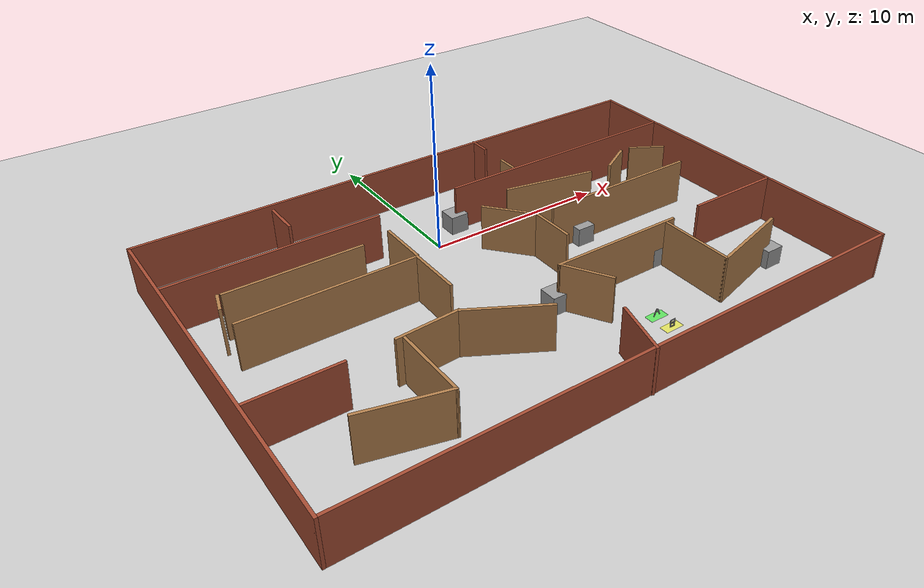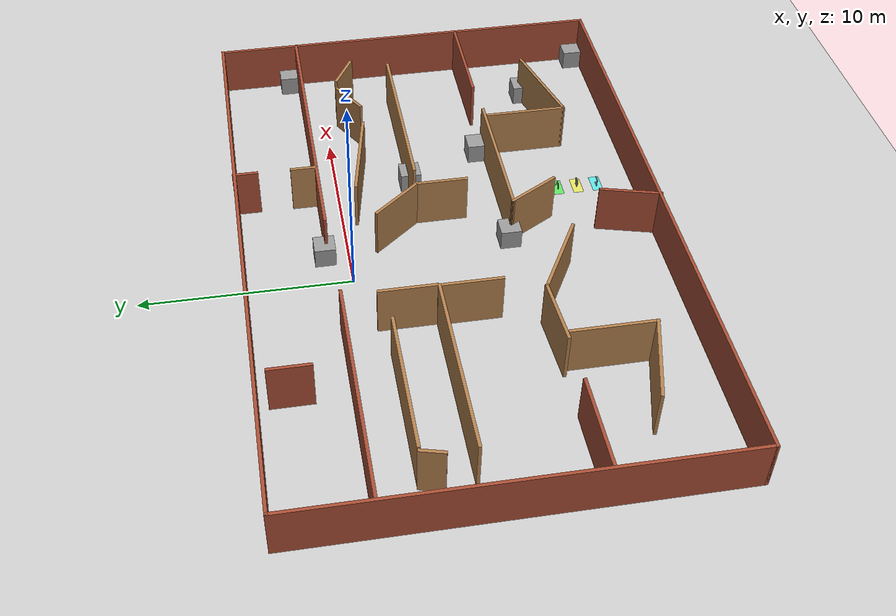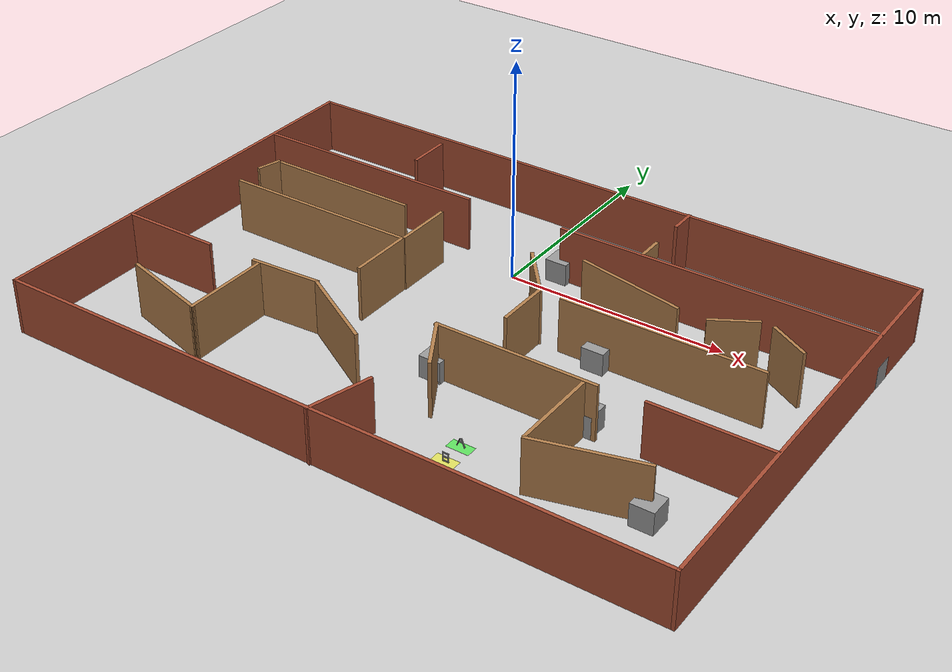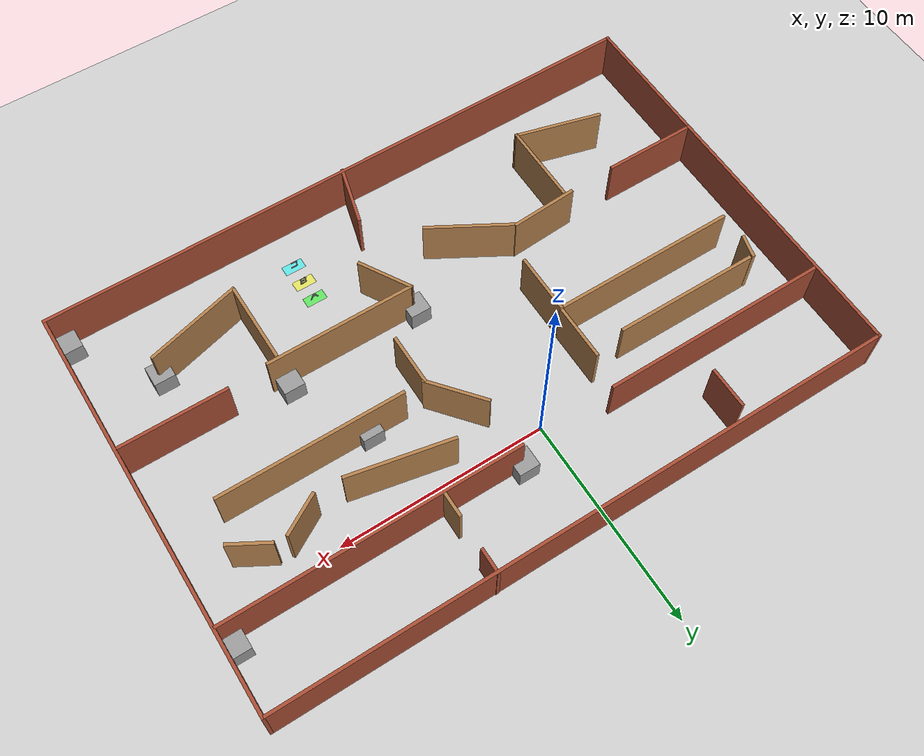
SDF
<sdf version="1.7">
 <world name="my_world">
  <model name="ground_plane">
   <static>1</static>
   <link name="link">
    <collision name="collision">
     <geometry><plane><normal>0 0 1</normal><size>100 100</size></plane></geometry>
     <surface>
      <contact><collide_bitmask>65535</collide_bitmask></contact>
      <friction><ode><mu>100</mu><mu2>50</mu2></ode></friction>
     </surface>
    </collision>
    <visual name="visual">
     <cast_shadows>0</cast_shadows>
     <geometry><plane><normal>0 0 1</normal><size>100 100</size></plane></geometry>
     <material>
      <script><uri>file://media/materials/scripts/gazebo.material</uri><name>Gazebo/Grey</name></script>
     </material>
    </visual>
   </link>
  </model>
  <model name="officeroom">
   <pose>0.9981 -4.92976 0 0 -0 0</pose>
   <link name="Wall_10">
    <collision name="Wall_10_Collision">
     <geometry><box><size>20 0.15 2.5</size></box></geometry>
     <pose>0 0 1.25 0 -0 0</pose>
    </collision>
    <visual name="Wall_10_Visual">
     <pose>0 0 1.25 0 -0 0</pose>
     <geometry><box><size>20 0.15 2.5</size></box></geometry>
     <material>
      <script><uri>file://media/materials/scripts/gazebo.material</uri><name>Gazebo/Bricks</name></script>
      <ambient>1 1 1 1</ambient>
     </material>
     <meta><layer>0</layer></meta>
    </visual>
    <pose>14.925 0.014919 0 0 -0 -1.57081</pose>
   </link>
   <link name="Wall_107">
    <collision name="Wall_107_Collision">
     <geometry><box><size>3.27854 0.15 2.5</size></box></geometry>
     <pose>0 0 1.25 0 -0 0</pose>
    </collision>
    <visual name="Wall_107_Visual">
     <pose>0 0 1.25 0 -0 0</pose>
     <geometry><box><size>3.27854 0.15 2.5</size></box></geometry>
     <material>
      <script><uri>file://media/materials/scripts/gazebo.material</uri><name>Gazebo/Wood</name></script>
      <ambient>1 1 1 1</ambient>
     </material>
     <meta><layer>0</layer></meta>
    </visual>
    <pose>-6.58027 -3.242 0 0 -0 -3.08207</pose>
   </link>
   <link name="Wall_109">
    <collision name="Wall_109_Collision">
     <geometry><box><size>4.5 0.15 2.5</size></box></geometry>
     <pose>0 0 1.25 0 -0 0</pose>
    </collision>
    <visual name="Wall_109_Visual">
     <pose>0 0 1.25 0 -0 0</pose>
     <geometry><box><size>4.5 0.15 2.5</size></box></geometry>
     <material>
      <script><uri>file://media/materials/scripts/gazebo.material</uri><name>Gazebo/Bricks</name></script>
      <ambient>1 1 1 1</ambient>
     </material>
     <meta><layer>0</layer></meta>
    </visual>
    <pose>-12.6881 -3.41033 0 0 -0 0</pose>
   </link>
   <link name="Wall_113">
    <collision name="Wall_113_Collision">
     <geometry><box><size>7.25 0.15 2.5</size></box></geometry>
     <pose>0 0 1.25 0 -0 0</pose>
    </collision>
    <visual name="Wall_113_Visual">
     <pose>0 0 1.25 0 -0 0</pose>
     <geometry><box><size>7.25 0.15 2.5</size></box></geometry>
     <material>
      <script><uri>file://media/materials/scripts/gazebo.material</uri><name>Gazebo/Wood</name></script>
      <ambient>1 1 1 1</ambient>
     </material>
     <meta><layer>0</layer></meta>
    </visual>
    <pose>4.22386 -2.91887 0 0 -0 0</pose>
   </link>
   <link name="Wall_115">
    <collision name="Wall_115_Collision">
     <geometry><box><size>5.25 0.15 2.5</size></box></geometry>
     <pose>0 0 1.25 0 -0 0</pose>
    </collision>
    <visual name="Wall_115_Visual">
     <pose>0 0 1.25 0 -0 0</pose>
     <geometry><box><size>5.25 0.15 2.5</size></box></geometry>
     <material>
      <script><uri>file://media/materials/scripts/gazebo.material</uri><name>Gazebo/Bricks</name></script>
      <ambient>1 1 1 1</ambient>
     </material>
     <meta><layer>0</layer></meta>
    </visual>
    <pose>12.3137 -2.7793 0 0 -0 3.14159</pose>
   </link>
   <link name="Wall_118">
    <collision name="Wall_118_Collision">
     <geometry><box><size>2.5 0.15 2.5</size></box></geometry>
     <pose>0 0 1.25 0 -0 0</pose>
    </collision>
    <visual name="Wall_118_Visual">
     <pose>0 0 1.25 0 -0 0</pose>
     <geometry><box><size>2.5 0.15 2.5</size></box></geometry>
     <material>
      <script><uri>file://media/materials/scripts/gazebo.material</uri><name>Gazebo/Wood</name></script>
      <ambient>1 1 1 1</ambient>
     </material>
     <meta><layer>0</layer></meta>
    </visual>
    <pose>2.60295 0.147134 0 0 -0 -1.5708</pose>
   </link>
   <link name="Wall_12">
    <collision name="Wall_12_Collision">
     <geometry><box><size>30 0.15 2.5</size></box></geometry>
     <pose>0 0 1.25 0 -0 0</pose>
    </collision>
    <visual name="Wall_12_Visual">
     <pose>0 0 1.25 0 -0 0</pose>
     <geometry><box><size>30 0.15 2.5</size></box></geometry>
     <material>
      <script><uri>file://media/materials/scripts/gazebo.material</uri><name>Gazebo/Bricks</name></script>
      <ambient>1 1 1 1</ambient>
     </material>
     <meta><layer>0</layer></meta>
    </visual>
    <pose>-0.000162 -9.90993 0 0 -0 3.14159</pose>
   </link>
   <link name="Wall_120">
    <collision name="Wall_120_Collision">
     <geometry><box><size>2.75 0.15 2.5</size></box></geometry>
     <pose>0 0 1.25 0 -0 0</pose>
    </collision>
    <visual name="Wall_120_Visual">
     <pose>0 0 1.25 0 -0 0</pose>
     <geometry><box><size>2.75 0.15 2.5</size></box></geometry>
     <material>
      <script><uri>file://media/materials/scripts/gazebo.material</uri><name>Gazebo/Wood</name></script>
      <ambient>1 1 1 1</ambient>
     </material>
     <meta><layer>0</layer></meta>
    </visual>
    <pose>1.32386 -4.0447 0 0 -0 -1.0472</pose>
   </link>
   <link name="Wall_125">
    <collision name="Wall_125_Collision">
     <geometry><box><size>4 0.15 2.5</size></box></geometry>
     <pose>0 0 1.25 0 -0 0</pose>
    </collision>
    <visual name="Wall_125_Visual">
     <pose>0 0 1.25 0 -0 0</pose>
     <geometry><box><size>4 0.15 2.5</size></box></geometry>
     <material>
      <script><uri>file://media/materials/scripts/gazebo.material</uri><name>Gazebo/Wood</name></script>
      <ambient>1 1 1 1</ambient>
     </material>
     <meta><layer>0</layer></meta>
    </visual>
    <pose>-7.82101 -5.406 0 0 -0 -1.5708</pose>
   </link>
   <link name="Wall_127">
    <collision name="Wall_127_Collision">
     <geometry><box><size>4 0.15 2.5</size></box></geometry>
     <pose>0 0 1.25 0 -0 0</pose>
    </collision>
    <visual name="Wall_127_Visual">
     <pose>0 0 1.25 0 -0 0</pose>
     <geometry><box><size>4 0.15 2.5</size></box></geometry>
     <material>
      <script><uri>file://media/materials/scripts/gazebo.material</uri><name>Gazebo/Wood</name></script>
      <ambient>1 1 1 1</ambient>
     </material>
     <meta><layer>0</layer></meta>
    </visual>
    <pose>7.28181 -5.01384 0 0 -0 -1.5708</pose>
   </link>
   <link name="Wall_129">
    <collision name="Wall_129_Collision">
     <geometry><box><size>4.25 0.15 2.5</size></box></geometry>
     <pose>0 0 1.25 0 -0 0</pose>
    </collision>
    <visual name="Wall_129_Visual">
     <pose>0 0 1.25 0 -0 0</pose>
     <geometry><box><size>4.25 0.15 2.5</size></box></geometry>
     <material>
      <script><uri>file://media/materials/scripts/gazebo.material</uri><name>Gazebo/Wood</name></script>
      <ambient>1 1 1 1</ambient>
     </material>
     <meta><layer>0</layer></meta>
    </visual>
    <pose>-9.80116 -6.80042 0 0 -0 2.87979</pose>
   </link>
   <link name="Wall_132">
    <collision name="Wall_132_Collision">
     <geometry><box><size>4.75 0.15 2.5</size></box></geometry>
     <pose>0 0 1.25 0 -0 0</pose>
    </collision>
    <visual name="Wall_132_Visual">
     <pose>0 0 1.25 0 -0 0</pose>
     <geometry><box><size>4.75 0.15 2.5</size></box></geometry>
     <material>
      <script><uri>file://media/materials/scripts/gazebo.material</uri><name>Gazebo/Wood</name></script>
      <ambient>1 1 1 1</ambient>
     </material>
     <meta><layer>0</layer></meta>
    </visual>
    <pose>9.51735 -6.40461 0 0 -0 0.261799</pose>
   </link>
   <link name="Wall_134">
    <collision name="Wall_134_Collision">
     <geometry><box><size>3 0.15 2.5</size></box></geometry>
     <pose>0 0 1.25 0 -0 0</pose>
    </collision>
    <visual name="Wall_134_Visual">
     <pose>0 0 1.25 0 -0 0</pose>
     <geometry><box><size>3 0.15 2.5</size></box></geometry>
     <material>
      <script><uri>file://media/materials/scripts/gazebo.material</uri><name>Gazebo/Bricks</name></script>
      <ambient>1 1 1 1</ambient>
     </material>
     <meta><layer>0</layer></meta>
    </visual>
    <pose>0.445972 -8.57754 0 0 -0 1.309</pose>
   </link>
   <link name="Wall_15">
    <collision name="Wall_15_Collision">
     <geometry><box><size>20 0.15 2.5</size></box></geometry>
     <pose>0 0 1.25 0 -0 0</pose>
    </collision>
    <visual name="Wall_15_Visual">
     <pose>0 0 1.25 0 -0 0</pose>
     <geometry><box><size>20 0.15 2.5</size></box></geometry>
     <material>
      <script><uri>file://media/materials/scripts/gazebo.material</uri><name>Gazebo/Bricks</name></script>
      <ambient>1 1 1 1</ambient>
     </material>
     <meta><layer>0</layer></meta>
    </visual>
    <pose>-14.9252 0.015073 0 0 -0 1.5708</pose>
   </link>
   <link name="Wall_2">
    <collision name="Wall_2_Collision">
     <geometry><box><size>30 0.15 2.5</size></box></geometry>
     <pose>0 0 1.25 0 -0 0</pose>
    </collision>
    <visual name="Wall_2_Visual">
     <pose>0 0 1.25 0 -0 0</pose>
     <geometry><box><size>30 0.15 2.5</size></box></geometry>
     <material>
      <script><uri>file://media/materials/scripts/gazebo.material</uri><name>Gazebo/Bricks</name></script>
      <ambient>1 1 1 1</ambient>
     </material>
     <meta><layer>0</layer></meta>
    </visual>
    <pose>0.000163 9.93976 0 0 -0 0</pose>
   </link>
   <link name="Wall_29">
    <collision name="Wall_29_Collision">
     <geometry><box><size>1.25 0.15 2.5</size></box></geometry>
     <pose>0 0 1.25 0 -0 0</pose>
    </collision>
    <visual name="Wall_29_Visual">
     <pose>0 0 1.25 0 -0 0</pose>
     <geometry><box><size>1.25 0.15 2.5</size></box></geometry>
     <material>
      <script><uri>file://media/materials/scripts/gazebo.material</uri><name>Gazebo/Bricks</name></script>
      <ambient>1 1 1 1</ambient>
     </material>
     <meta><layer>0</layer></meta>
    </visual>
    <pose>4.61028 9.42084 0 0 -0 -1.5708</pose>
   </link>
   <link name="Wall_31">
    <collision name="Wall_31_Collision">
     <geometry><box><size>1.25 0.15 2.5</size></box></geometry>
     <pose>0 0 1.25 0 -0 0</pose>
    </collision>
    <visual name="Wall_31_Visual">
     <pose>0 0 1.25 0 -0 0</pose>
     <geometry><box><size>1.25 0.15 2.5</size></box></geometry>
     <material>
      <script><uri>file://media/materials/scripts/gazebo.material</uri><name>Gazebo/Wood</name></script>
      <ambient>1 1 1 1</ambient>
     </material>
     <meta><layer>0</layer></meta>
    </visual>
    <pose>4.59016 6.61881 0 0 -0 1.5708</pose>
   </link>
   <link name="Wall_34">
    <collision name="Wall_34_Collision">
     <geometry><box><size>2 0.15 2.5</size></box></geometry>
     <pose>0 0 1.25 0 -0 0</pose>
    </collision>
    <visual name="Wall_34_Visual">
     <pose>0 0 1.25 0 -0 0</pose>
     <geometry><box><size>2 0.15 2.5</size></box></geometry>
     <material>
      <script><uri>file://media/materials/scripts/gazebo.material</uri><name>Gazebo/Bricks</name></script>
      <ambient>1 1 1 1</ambient>
     </material>
     <meta><layer>0</layer></meta>
    </visual>
    <pose>-7.92097 8.43964 0 0 -0 -1.5708</pose>
   </link>
   <link name="Wall_38">
    <collision name="Wall_38_Collision">
     <geometry><box><size>11 0.15 2.5</size></box></geometry>
     <pose>0 0 1.25 0 -0 0</pose>
    </collision>
    <visual name="Wall_38_Visual">
     <pose>0 0 1.25 0 -0 0</pose>
     <geometry><box><size>11 0.15 2.5</size></box></geometry>
     <material>
      <script><uri>file://media/materials/scripts/gazebo.material</uri><name>Gazebo/Bricks</name></script>
      <ambient>1 1 1 1</ambient>
     </material>
     <meta><layer>0</layer></meta>
    </visual>
    <pose>-9.35541 5.8262 0 0 -0 0</pose>
   </link>
   <link name="Wall_40">
    <collision name="Wall_40_Collision">
     <geometry><box><size>14.25 0.15 2.5</size></box></geometry>
     <pose>0 0 1.25 0 -0 0</pose>
    </collision>
    <visual name="Wall_40_Visual">
     <pose>0 0 1.25 0 -0 0</pose>
     <geometry><box><size>14.25 0.15 2.5</size></box></geometry>
     <material>
      <script><uri>file://media/materials/scripts/gazebo.material</uri><name>Gazebo/Bricks</name></script>
      <ambient>1 1 1 1</ambient>
     </material>
     <meta><layer>0</layer></meta>
    </visual>
    <pose>7.83962 5.98375 0 0 -0 3.14159</pose>
   </link>
   <link name="Wall_46">
    <collision name="Wall_46_Collision">
     <geometry><box><size>7.0 0.15 2.5</size></box></geometry>
     <pose>0 0 1.25 0 -0 0</pose>
    </collision>
    <visual name="Wall_46_Visual">
     <pose>0 0 1.25 0 -0 0</pose>
     <geometry><box><size>7.0 0.15 2.5</size></box></geometry>
     <material>
      <script><uri>file://media/materials/scripts/gazebo.material</uri><name>Gazebo/Wood</name></script>
      <ambient>1 1 1 1</ambient>
     </material>
     <meta><layer>0</layer></meta>
    </visual>
    <pose>-9.30884 3.8355 0 0 -0 -0.004163</pose>
   </link>
   <link name="Wall_49">
    <collision name="Wall_49_Collision">
     <geometry><box><size>1.17019 0.15 2.5</size></box></geometry>
     <pose>0 0 1.25 0 -0 0</pose>
    </collision>
    <visual name="Wall_49_Visual">
     <pose>0 0 1.25 0 -0 0</pose>
     <geometry><box><size>1.17019 0.15 2.5</size></box></geometry>
     <material>
      <script><uri>file://media/materials/scripts/gazebo.material</uri><name>Gazebo/Wood</name></script>
      <ambient>1 1 1 1</ambient>
     </material>
     <meta><layer>0</layer></meta>
    </visual>
    <pose>-13.076 3.35727 0 0 -0 -1.82702</pose>
   </link>
   <link name="Wall_57">
    <collision name="Wall_57_Collision">
     <geometry><box><size>2.75 0.15 2.5</size></box></geometry>
     <pose>0 0 1.25 0 -0 0</pose>
    </collision>
    <visual name="Wall_57_Visual">
     <pose>0 0 1.25 0 -0 0</pose>
     <geometry><box><size>2.75 0.15 2.5</size></box></geometry>
     <material>
      <script><uri>file://media/materials/scripts/gazebo.material</uri><name>Gazebo/Wood</name></script>
      <ambient>1 1 1 1</ambient>
     </material>
     <meta><layer>0</layer></meta>
    </visual>
    <pose>-4.21161 2.89682 0 0 -0 1.5708</pose>
   </link>
   <link name="Wall_59">
    <collision name="Wall_59_Collision">
     <geometry><box><size>5.0 0.15 2.5</size></box></geometry>
     <pose>0 0 1.25 0 -0 0</pose>
    </collision>
    <visual name="Wall_59_Visual">
     <pose>0 0 1.25 0 -0 0</pose>
     <geometry><box><size>5.0 0.15 2.5</size></box></geometry>
     <material>
      <script><uri>file://media/materials/scripts/gazebo.material</uri><name>Gazebo/Wood</name></script>
      <ambient>1 1 1 1</ambient>
     </material>
     <meta><layer>0</layer></meta>
    </visual>
    <pose>5.28704 3.77735 0 0 -0 -0.202428</pose>
   </link>
   <link name="Wall_60">
    <collision name="Wall_60_Collision">
     <geometry><box><size>2.1 0.15 2.5</size></box></geometry>
     <pose>0 0 1.25 0 -0 0</pose>
    </collision>
    <visual name="Wall_60_Visual">
     <pose>0 0 1.25 0 -0 0</pose>
     <geometry><box><size>2.1 0.15 2.5</size></box></geometry>
     <material>
      <script><uri>file://media/materials/scripts/gazebo.material</uri><name>Gazebo/Wood</name></script>
      <ambient>1 1 1 1</ambient>
     </material>
     <meta><layer>0</layer></meta>
    </visual>
    <pose>9.88652 3.73459 0 0 -0 0.527727</pose>
   </link>
   <link name="Wall_61">
    <collision name="Wall_61_Collision">
     <geometry><box><size>2.0 0.15 2.5</size></box></geometry>
     <pose>0 0 1.25 0 -0 0</pose>
    </collision>
    <visual name="Wall_61_Visual">
     <pose>0 0 1.25 0 -0 0</pose>
     <geometry><box><size>2.0 0.15 2.5</size></box></geometry>
     <material>
      <script><uri>file://media/materials/scripts/gazebo.material</uri><name>Gazebo/Wood</name></script>
      <ambient>1 1 1 1</ambient>
     </material>
     <meta><layer>0</layer></meta>
    </visual>
    <pose>12.2003 3.7238 0 0 -0 -0.523599</pose>
   </link>
   <link name="Wall_66">
    <collision name="Wall_66_Collision">
     <geometry><box><size>3.01901 0.15 2.5</size></box></geometry>
     <pose>0 0 1.25 0 -0 0</pose>
    </collision>
    <visual name="Wall_66_Visual">
     <pose>0 0 1.25 0 -0 0</pose>
     <geometry><box><size>3.01901 0.15 2.5</size></box></geometry>
     <material>
      <script><uri>file://media/materials/scripts/gazebo.material</uri><name>Gazebo/Wood</name></script>
      <ambient>1 1 1 1</ambient>
     </material>
     <meta><layer>0</layer></meta>
    </visual>
    <pose>1.74226 2.43334 0 0 -0 2.25548</pose>
   </link>
   <link name="Wall_68">
    <collision name="Wall_68_Collision">
     <geometry><box><size>9 0.15 2.5</size></box></geometry>
     <pose>0 0 1.25 0 -0 0</pose>
    </collision>
    <visual name="Wall_68_Visual">
     <pose>0 0 1.25 0 -0 0</pose>
     <geometry><box><size>9 0.15 2.5</size></box></geometry>
     <material>
      <script><uri>file://media/materials/scripts/gazebo.material</uri><name>Gazebo/Wood</name></script>
      <ambient>1 1 1 1</ambient>
     </material>
     <meta><layer>0</layer></meta>
    </visual>
    <pose>-8.68528 1.49923 0 0 -0 3.14159</pose>
   </link>
   <link name="Wall_72">
    <collision name="Wall_72_Collision">
     <geometry><box><size>8.9356 0.15 2.5</size></box></geometry>
     <pose>0 0 1.25 0 -0 0</pose>
    </collision>
    <visual name="Wall_72_Visual">
     <pose>0 0 1.25 0 -0 0</pose>
     <geometry><box><size>8.9356 0.15 2.5</size></box></geometry>
     <material>
      <script><uri>file://media/materials/scripts/gazebo.material</uri><name>Gazebo/Wood</name></script>
      <ambient>1 1 1 1</ambient>
     </material>
     <meta><layer>0</layer></meta>
    </visual>
    <pose>8.04226 1.32213 0 0 -0 3.14159</pose>
   </link>
   <link name="Wall_75">
    <collision name="Wall_75_Collision">
     <geometry><box><size>3 0.15 2.5</size></box></geometry>
     <pose>0 0 1.25 0 -0 0</pose>
    </collision>
    <visual name="Wall_75_Visual">
     <pose>0 0 1.25 0 -0 0</pose>
     <geometry><box><size>3 0.15 2.5</size></box></geometry>
     <material>
      <script><uri>file://media/materials/scripts/gazebo.material</uri><name>Gazebo/Wood</name></script>
      <ambient>1 1 1 1</ambient>
     </material>
     <meta><layer>0</layer></meta>
    </visual>
    <pose>-4.26028 0.074229 0 0 -0 -1.5708</pose>
   </link>
   <link name="Wall_81">
    <collision name="Wall_81_Collision">
     <geometry><box><size>4.25 0.15 2.5</size></box></geometry>
     <pose>0 0 1.25 0 -0 0</pose>
    </collision>
    <visual name="Wall_81_Visual">
     <pose>0 0 1.25 0 -0 0</pose>
     <geometry><box><size>4.25 0.15 2.5</size></box></geometry>
     <material>
      <script><uri>file://media/materials/scripts/gazebo.material</uri><name>Gazebo/Wood</name></script>
      <ambient>1 1 1 1</ambient>
     </material>
     <meta><layer>0</layer></meta>
    </visual>
    <pose>-3.1969 -4.22048 0 0 -0 -0.523599</pose>
   </link>
   <static>1</static>
  </model>
  <model name="zone_a">
   <static>1</static>
   <pose>5 -11 0.01 0 -0 0</pose>
   <link name="base">
    <visual name="visual">
     <geometry><box><size>1 0.5 0.02</size></box></geometry>
     <material><ambient>0 1 0 0.5</ambient><diffuse>0 1 0 0.5</diffuse></material>
    </visual>
   </link>
   <link name="letter_A_1">
    <pose>-0.1 0 0.22 0 0.4 0</pose>
    <visual name="v">
     <geometry><box><size>0.04 0.04 0.4</size></box></geometry>
     <material><ambient>0 0 0 1</ambient><diffuse>0 0 0 1</diffuse></material>
    </visual>
   </link>
   <link name="letter_A_2">
    <pose>0.1 0 0.22 0 -0.4 0</pose>
    <visual name="v">
     <geometry><box><size>0.04 0.04 0.4</size></box></geometry>
     <material><ambient>0 0 0 1</ambient><diffuse>0 0 0 1</diffuse></material>
    </visual>
   </link>
   <link name="letter_A_3">
    <pose>0 0 0.25 0 -0 0</pose>
    <visual name="v">
     <geometry><box><size>0.15 0.04 0.04</size></box></geometry>
     <material><ambient>0 0 0 1</ambient><diffuse>0 0 0 1</diffuse></material>
    </visual>
   </link>
  </model>
  <model name="zone_b">
   <static>1</static>
   <pose>5 -12 0.01 0 -0 0</pose>
   <link name="base">
    <visual name="visual">
     <geometry><box><size>1 0.5 0.02</size></box></geometry>
     <material><ambient>1 1 0 0.5</ambient><diffuse>1 1 0 0.5</diffuse></material>
    </visual>
   </link>
   <link name="letter_B_vertical_stroke">
    <pose>-0.1 0 0.2 0 -0 0</pose>
    <visual name="v">
     <geometry><box><size>0.04 0.04 0.4</size></box></geometry>
     <material><ambient>0 0 0 1</ambient><diffuse>0 0 0 1</diffuse></material>
    </visual>
   </link>
   <link name="letter_B_top_horizontal">
    <pose>0.05 0 0.38 0 -0 0</pose>
    <visual name="v">
     <geometry><box><size>0.25 0.04 0.04</size></box></geometry>
     <material><ambient>0 0 0 1</ambient><diffuse>0 0 0 1</diffuse></material>
    </visual>
   </link>
   <link name="letter_B_middle_horizontal">
    <pose>0.05 0 0.2 0 -0 0</pose>
    <visual name="v">
     <geometry><box><size>0.25 0.04 0.04</size></box></geometry>
     <material><ambient>0 0 0 1</ambient><diffuse>0 0 0 1</diffuse></material>
    </visual>
   </link>
   <link name="letter_B_bottom_horizontal">
    <pose>0.05 0 0.02 0 -0 0</pose>
    <visual name="v">
     <geometry><box><size>0.25 0.04 0.04</size></box></geometry>
     <material><ambient>0 0 0 1</ambient><diffuse>0 0 0 1</diffuse></material>
    </visual>
   </link>
   <link name="letter_B_top_vertical_stroke">
    <pose>0.15 0 0.29 0 -0 0</pose>
    <visual name="v">
     <geometry><box><size>0.04 0.04 0.2</size></box></geometry>
     <material><ambient>0 0 0 1</ambient><diffuse>0 0 0 1</diffuse></material>
    </visual>
   </link>
   <link name="letter_B_bottom_vertical_stroke">
    <pose>0.15 0 0.11 0 -0 0</pose>
    <visual name="v">
     <geometry><box><size>0.04 0.04 0.2</size></box></geometry>
     <material><ambient>0 0 0 1</ambient><diffuse>0 0 0 1</diffuse></material>
    </visual>
   </link>
  </model>
  <model name="zone_c">
   <static>1</static>
   <pose>5 -13 0.01 0 -0 0</pose>
   <link name="base">
    <visual name="visual">
     <geometry><box><size>1 0.5 0.02</size></box></geometry>
     <material><ambient>0 1 1 0.5</ambient><diffuse>0 1 1 0.5</diffuse></material>
    </visual>
   </link>
   <link name="letter_C_1">
    <pose>-0.05 0 0.38 0 -0 0</pose>
    <visual name="v">
     <geometry><box><size>0.3 0.04 0.04</size></box></geometry>
     <material><ambient>0 0 0 1</ambient><diffuse>0 0 0 1</diffuse></material>
    </visual>
   </link>
   <link name="letter_C_2">
    <pose>-0.05 0 0.02 0 -0 0</pose>
    <visual name="v">
     <geometry><box><size>0.3 0.04 0.04</size></box></geometry>
     <material><ambient>0 0 0 1</ambient><diffuse>0 0 0 1</diffuse></material>
    </visual>
   </link>
   <link name="letter_C_3">
    <pose>-0.18 0 0.2 0 -0 0</pose>
    <visual name="v">
     <geometry><box><size>0.04 0.04 0.4</size></box></geometry>
     <material><ambient>0 0 0 1</ambient><diffuse>0 0 0 1</diffuse></material>
    </visual>
   </link>
  </model>
  <model name="independent_box_2">
   <pose>1.733327 1.16425 0.5 0 -0 0</pose>
   <link name="link_2">
    <inertial>
     <mass>1</mass>
     <inertia>
      <ixx>0.166667</ixx>
      <ixy>0</ixy>
      <ixz>0</ixz>
      <iyy>0.166667</iyy>
      <iyz>0</iyz>
      <izz>0.166667</izz>
     </inertia>
    </inertial>
    <visual name="visual">
     <geometry><box><size>1 1 1</size></box></geometry>
     <material>
      <lighting>1</lighting>
      <script><uri>file://media/materials/scripts/gazebo.material</uri><name>Gazebo/Grey</name></script>
      <shader type="pixel"/>
     </material>
    </visual>
    <collision name="collision">
     <geometry><box><size>1 1 1</size></box></geometry>
     <surface>
      <friction>
       <ode><mu>1</mu><mu2>1</mu2><fdir1>0 0 0</fdir1><slip1>0</slip1><slip2>0</slip2></ode>
       <torsional>
        <coefficient>1</coefficient>
        <patch_radius>0</patch_radius>
        <surface_radius>0</surface_radius>
        <use_patch_radius>1</use_patch_radius>
        <ode><slip>0</slip></ode>
       </torsional>
      </friction>
      <bounce><restitution_coefficient>0</restitution_coefficient><threshold>1e+06</threshold></bounce>
      <contact>
       <collide_without_contact>0</collide_without_contact>
       <collide_without_contact_bitmask>1</collide_without_contact_bitmask>
       <collide_bitmask>1</collide_bitmask>
       <ode>
        <soft_cfm>0</soft_cfm>
        <soft_erp>0.2</soft_erp>
        <kp>1e+13</kp>
        <kd>1</kd>
        <max_vel>0.01</max_vel>
        <min_depth>0</min_depth>
       </ode>
       <bullet>
        <split_impulse>1</split_impulse>
        <split_impulse_penetration_threshold>-0.01</split_impulse_penetration_threshold>
        <soft_cfm>0</soft_cfm>
        <soft_erp>0.2</soft_erp>
        <kp>1e+13</kp>
        <kd>1</kd>
       </bullet>
      </contact>
     </surface>
    </collision>
   </link>
   <static>0</static>
  </model>
  <model name="independent_box_3">
   <pose>15.505298 1.54302 0.5 0 -0 0</pose>
   <link name="link_3">
    <inertial>
     <mass>1</mass>
     <inertia>
      <ixx>0.166667</ixx>
      <ixy>0</ixy>
      <ixz>0</ixz>
      <iyy>0.166667</iyy>
      <iyz>0</iyz>
      <izz>0.166667</izz>
     </inertia>
    </inertial>
    <visual name="visual">
     <geometry><box><size>1 1 1</size></box></geometry>
     <material>
      <lighting>1</lighting>
      <script><uri>file://media/materials/scripts/gazebo.material</uri><name>Gazebo/Grey</name></script>
      <shader type="pixel"/>
     </material>
    </visual>
    <collision name="collision">
     <geometry><box><size>1 1 1</size></box></geometry>
     <surface>
      <friction>
       <ode><mu>1</mu><mu2>1</mu2><fdir1>0 0 0</fdir1><slip1>0</slip1><slip2>0</slip2></ode>
       <torsional>
        <coefficient>1</coefficient>
        <patch_radius>0</patch_radius>
        <surface_radius>0</surface_radius>
        <use_patch_radius>1</use_patch_radius>
        <ode><slip>0</slip></ode>
       </torsional>
      </friction>
      <bounce><restitution_coefficient>0</restitution_coefficient><threshold>1e+06</threshold></bounce>
      <contact>
       <collide_without_contact>0</collide_without_contact>
       <collide_without_contact_bitmask>1</collide_without_contact_bitmask>
       <collide_bitmask>1</collide_bitmask>
       <ode>
        <soft_cfm>0</soft_cfm>
        <soft_erp>0.2</soft_erp>
        <kp>1e+13</kp>
        <kd>1</kd>
        <max_vel>0.01</max_vel>
        <min_depth>0</min_depth>
       </ode>
       <bullet>
        <split_impulse>1</split_impulse>
        <split_impulse_penetration_threshold>-0.01</split_impulse_penetration_threshold>
        <soft_cfm>0</soft_cfm>
        <soft_erp>0.2</soft_erp>
        <kp>1e+13</kp>
        <kd>1</kd>
       </bullet>
      </contact>
     </surface>
    </collision>
   </link>
   <static>0</static>
  </model>
  <model name="independent_box_5">
   <pose>6.424538 -3.66884 0.5 0 -0 0</pose>
   <link name="link_5">
    <inertial>
     <mass>1</mass>
     <inertia>
      <ixx>0.166667</ixx>
      <ixy>0</ixy>
      <ixz>0</ixz>
      <iyy>0.166667</iyy>
      <iyz>0</iyz>
      <izz>0.166667</izz>
     </inertia>
    </inertial>
    <visual name="visual">
     <geometry><box><size>1 1 1</size></box></geometry>
     <material>
      <lighting>1</lighting>
      <script><uri>file://media/materials/scripts/gazebo.material</uri><name>Gazebo/Grey</name></script>
      <shader type="pixel"/>
     </material>
    </visual>
    <collision name="collision">
     <geometry><box><size>1 1 1</size></box></geometry>
     <surface>
      <friction>
       <ode><mu>1</mu><mu2>1</mu2><fdir1>0 0 0</fdir1><slip1>0</slip1><slip2>0</slip2></ode>
       <torsional>
        <coefficient>1</coefficient>
        <patch_radius>0</patch_radius>
        <surface_radius>0</surface_radius>
        <use_patch_radius>1</use_patch_radius>
        <ode><slip>0</slip></ode>
       </torsional>
      </friction>
      <bounce><restitution_coefficient>0</restitution_coefficient><threshold>1e+06</threshold></bounce>
      <contact>
       <collide_without_contact>0</collide_without_contact>
       <collide_without_contact_bitmask>1</collide_without_contact_bitmask>
       <collide_bitmask>1</collide_bitmask>
       <ode>
        <soft_cfm>0</soft_cfm>
        <soft_erp>0.2</soft_erp>
        <kp>1e+13</kp>
        <kd>1</kd>
        <max_vel>0.01</max_vel>
        <min_depth>0</min_depth>
       </ode>
       <bullet>
        <split_impulse>1</split_impulse>
        <split_impulse_penetration_threshold>-0.01</split_impulse_penetration_threshold>
        <soft_cfm>0</soft_cfm>
        <soft_erp>0.2</soft_erp>
        <kp>1e+13</kp>
        <kd>1</kd>
       </bullet>
      </contact>
     </surface>
    </collision>
   </link>
   <static>0</static>
  </model>
  <model name="independent_box_6">
   <pose>8.162048 -7.42608 0.5 0 -0 0</pose>
   <link name="link_6">
    <inertial>
     <mass>1</mass>
     <inertia>
      <ixx>0.166667</ixx>
      <ixy>0</ixy>
      <ixz>0</ixz>
      <iyy>0.166667</iyy>
      <iyz>0</iyz>
      <izz>0.166667</izz>
     </inertia>
    </inertial>
    <visual name="visual">
     <geometry><box><size>1 1 1</size></box></geometry>
     <material>
      <lighting>1</lighting>
      <script><uri>file://media/materials/scripts/gazebo.material</uri><name>Gazebo/Grey</name></script>
      <shader type="pixel"/>
     </material>
    </visual>
    <collision name="collision">
     <geometry><box><size>1 1 1</size></box></geometry>
     <surface>
      <friction>
       <ode><mu>1</mu><mu2>1</mu2><fdir1>0 0 0</fdir1><slip1>0</slip1><slip2>0</slip2></ode>
       <torsional>
        <coefficient>1</coefficient>
        <patch_radius>0</patch_radius>
        <surface_radius>0</surface_radius>
        <use_patch_radius>1</use_patch_radius>
        <ode><slip>0</slip></ode>
       </torsional>
      </friction>
      <bounce><restitution_coefficient>0</restitution_coefficient><threshold>1e+06</threshold></bounce>
      <contact>
       <collide_without_contact>0</collide_without_contact>
       <collide_without_contact_bitmask>1</collide_without_contact_bitmask>
       <collide_bitmask>1</collide_bitmask>
       <ode>
        <soft_cfm>0</soft_cfm>
        <soft_erp>0.2</soft_erp>
        <kp>1e+13</kp>
        <kd>1</kd>
        <max_vel>0.01</max_vel>
        <min_depth>0</min_depth>
       </ode>
       <bullet>
        <split_impulse>1</split_impulse>
        <split_impulse_penetration_threshold>-0.01</split_impulse_penetration_threshold>
        <soft_cfm>0</soft_cfm>
        <soft_erp>0.2</soft_erp>
        <kp>1e+13</kp>
        <kd>1</kd>
       </bullet>
      </contact>
     </surface>
    </collision>
   </link>
   <static>0</static>
  </model>
  <model name="independent_box_7">
   <pose>1.574661 -7.73198 0.5 0 -0 0</pose>
   <link name="link_7">
    <inertial>
     <mass>1</mass>
     <inertia>
      <ixx>0.166667</ixx>
      <ixy>0</ixy>
      <ixz>0</ixz>
      <iyy>0.166667</iyy>
      <iyz>0</iyz>
      <izz>0.166667</izz>
     </inertia>
    </inertial>
    <visual name="visual">
     <geometry><box><size>1 1 1</size></box></geometry>
     <material>
      <lighting>1</lighting>
      <script><uri>file://media/materials/scripts/gazebo.material</uri><name>Gazebo/Grey</name></script>
      <shader type="pixel"/>
     </material>
    </visual>
    <collision name="collision">
     <geometry><box><size>1 1 1</size></box></geometry>
     <surface>
      <friction>
       <ode><mu>1</mu><mu2>1</mu2><fdir1>0 0 0</fdir1><slip1>0</slip1><slip2>0</slip2></ode>
       <torsional>
        <coefficient>1</coefficient>
        <patch_radius>0</patch_radius>
        <surface_radius>0</surface_radius>
        <use_patch_radius>1</use_patch_radius>
        <ode><slip>0</slip></ode>
       </torsional>
      </friction>
      <bounce><restitution_coefficient>0</restitution_coefficient><threshold>1e+06</threshold></bounce>
      <contact>
       <collide_without_contact>0</collide_without_contact>
       <collide_without_contact_bitmask>1</collide_without_contact_bitmask>
       <collide_bitmask>1</collide_bitmask>
       <ode>
        <soft_cfm>0</soft_cfm>
        <soft_erp>0.2</soft_erp>
        <kp>1e+13</kp>
        <kd>1</kd>
        <max_vel>0.01</max_vel>
        <min_depth>0</min_depth>
       </ode>
       <bullet>
        <split_impulse>1</split_impulse>
        <split_impulse_penetration_threshold>-0.01</split_impulse_penetration_threshold>
        <soft_cfm>0</soft_cfm>
        <soft_erp>0.2</soft_erp>
        <kp>1e+13</kp>
        <kd>1</kd>
       </bullet>
      </contact>
     </surface>
    </collision>
   </link>
   <static>0</static>
  </model>
  <model name="independent_box_10">
   <pose>12.693598 -10.81311 0.5 0 -0 0</pose>
   <link name="link_10">
    <inertial>
     <mass>1</mass>
     <inertia>
      <ixx>0.166667</ixx>
      <ixy>0</ixy>
      <ixz>0</ixz>
      <iyy>0.166667</iyy>
      <iyz>0</iyz>
      <izz>0.166667</izz>
     </inertia>
    </inertial>
    <visual name="visual">
     <geometry><box><size>1 1 1</size></box></geometry>
     <material>
      <lighting>1</lighting>
      <script><uri>file://media/materials/scripts/gazebo.material</uri><name>Gazebo/Grey</name></script>
      <shader type="pixel"/>
     </material>
    </visual>
    <collision name="collision">
     <geometry><box><size>1 1 1</size></box></geometry>
     <surface>
      <friction>
       <ode><mu>1</mu><mu2>1</mu2><fdir1>0 0 0</fdir1><slip1>0</slip1><slip2>0</slip2></ode>
       <torsional>
        <coefficient>1</coefficient>
        <patch_radius>0</patch_radius>
        <surface_radius>0</surface_radius>
        <use_patch_radius>1</use_patch_radius>
        <ode><slip>0</slip></ode>
       </torsional>
      </friction>
      <bounce><restitution_coefficient>0</restitution_coefficient><threshold>1e+06</threshold></bounce>
      <contact>
       <collide_without_contact>0</collide_without_contact>
       <collide_without_contact_bitmask>1</collide_without_contact_bitmask>
       <collide_bitmask>1</collide_bitmask>
       <ode>
        <soft_cfm>0</soft_cfm>
        <soft_erp>0.2</soft_erp>
        <kp>1e+13</kp>
        <kd>1</kd>
        <max_vel>0.01</max_vel>
        <min_depth>0</min_depth>
       </ode>
       <bullet>
        <split_impulse>1</split_impulse>
        <split_impulse_penetration_threshold>-0.01</split_impulse_penetration_threshold>
        <soft_cfm>0</soft_cfm>
        <soft_erp>0.2</soft_erp>
        <kp>1e+13</kp>
        <kd>1</kd>
       </bullet>
      </contact>
     </surface>
    </collision>
   </link>
   <static>0</static>
  </model>
  <model name="independent_box_12">
   <pose>15.471498 -14.30407 0.5 0 -0 0</pose>
   <link name="link_12">
    <inertial>
     <mass>1</mass>
     <inertia>
      <ixx>0.166667</ixx>
      <ixy>0</ixy>
      <ixz>0</ixz>
      <iyy>0.166667</iyy>
      <iyz>0</iyz>
      <izz>0.166667</izz>
     </inertia>
    </inertial>
    <visual name="visual">
     <geometry><box><size>1 1 1</size></box></geometry>
     <material>
      <lighting>1</lighting>
      <script><uri>file://media/materials/scripts/gazebo.material</uri><name>Gazebo/Grey</name></script>
      <shader type="pixel"/>
     </material>
    </visual>
    <collision name="collision">
     <geometry><box><size>1 1 1</size></box></geometry>
     <surface>
      <friction>
       <ode><mu>1</mu><mu2>1</mu2><fdir1>0 0 0</fdir1><slip1>0</slip1><slip2>0</slip2></ode>
       <torsional>
        <coefficient>1</coefficient>
        <patch_radius>0</patch_radius>
        <surface_radius>0</surface_radius>
        <use_patch_radius>1</use_patch_radius>
        <ode><slip>0</slip></ode>
       </torsional>
      </friction>
      <bounce><restitution_coefficient>0</restitution_coefficient><threshold>1e+06</threshold></bounce>
      <contact>
       <collide_without_contact>0</collide_without_contact>
       <collide_without_contact_bitmask>1</collide_without_contact_bitmask>
       <collide_bitmask>1</collide_bitmask>
       <ode>
        <soft_cfm>0</soft_cfm>
        <soft_erp>0.2</soft_erp>
        <kp>1e+13</kp>
        <kd>1</kd>
        <max_vel>0.01</max_vel>
        <min_depth>0</min_depth>
       </ode>
       <bullet>
        <split_impulse>1</split_impulse>
        <split_impulse_penetration_threshold>-0.01</split_impulse_penetration_threshold>
        <soft_cfm>0</soft_cfm>
        <soft_erp>0.2</soft_erp>
        <kp>1e+13</kp>
        <kd>1</kd>
       </bullet>
      </contact>
     </surface>
    </collision>
   </link>
   <static>0</static>
  </model>
 </world>
</sdf>
